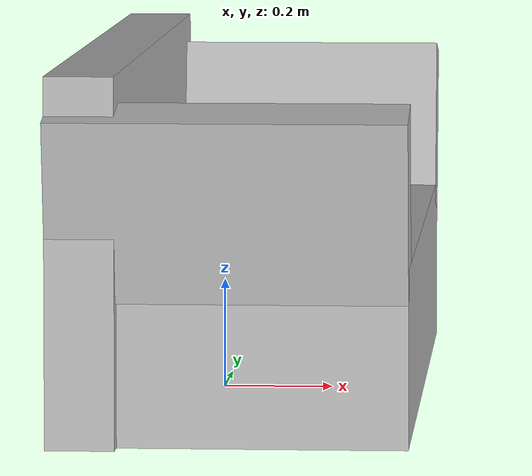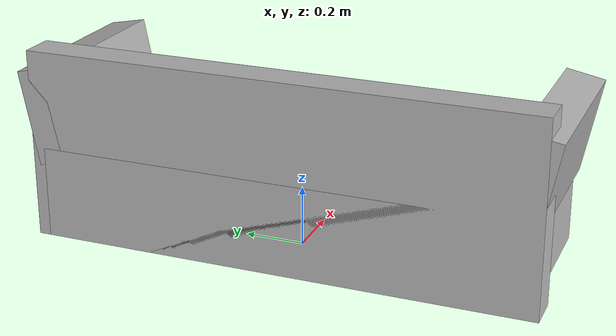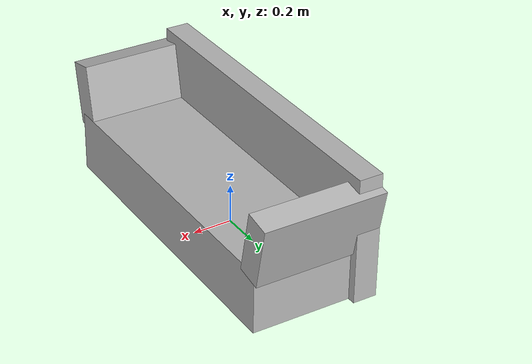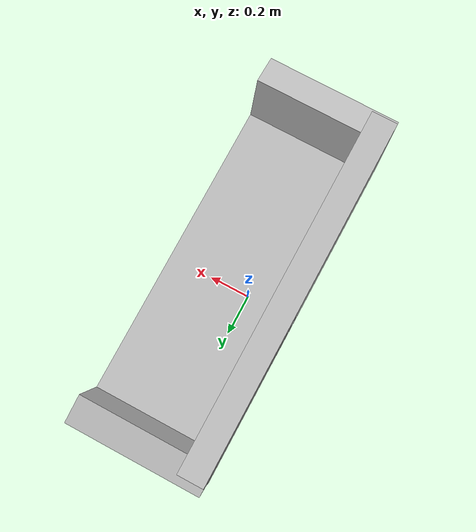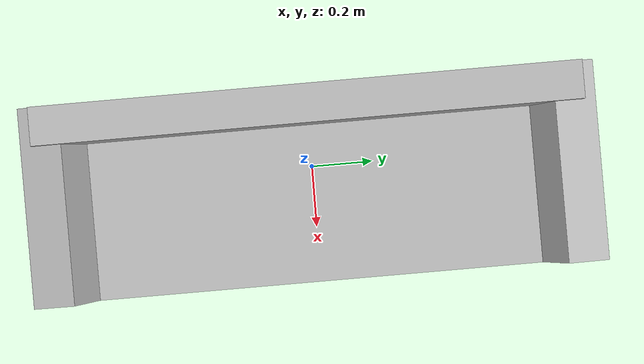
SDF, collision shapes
<?xml version="1.0"?>
<sdf version="1.4">
  <model name="sofa">
    <static>false</static>
    <link name="link">
      <visual name="visual">
        <geometry>
          <mesh>
            <uri>model://sofa/meshes/sofa.dae</uri>
<scale>0.8 0.8 0.8</scale>
          </mesh>
        </geometry>

      </visual>
     <collision name="collision_1">
	<pose>0.06 0  0.155 0 0 0</pose>
        <geometry>
		<box><size>0.62 1.62 0.31</size></box>
        </geometry>

      </collision>
     <collision name="collision_2">
	<pose>-0.19 0  0.32 0 0 0</pose>
        <geometry>
		<box><size>0.12 1.70 0.64</size></box>
        </geometry>

      </collision>

     <collision name="collision_3">
	<pose>0.06 0.795  0.42 -0.195 0 0</pose>
        <geometry>
		<box><size>0.62 0.13 0.32</size></box>
        </geometry>

      </collision>
     <collision name="collision_4">
	<pose>0.06 -0.795  0.42 0.195 0 0</pose>
        <geometry>
		<box><size>0.62 0.13 0.32</size></box>
        </geometry>

      </collision>
    </link>
  </model>
</sdf>
